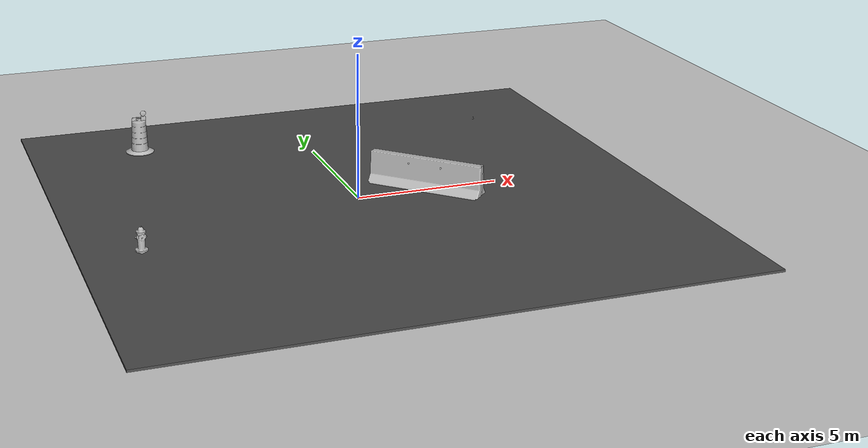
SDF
<sdf version="1.6">
 <world name="default">
  <light name="sun" type="directional">
   <pose>0 0 10 0 -0 0</pose>
   <diffuse>0.8 0.8 0.8 1</diffuse>
   <specular>0.2 0.2 0.2 1</specular>
   <attenuation>
    <range>1000</range>
    <constant>0.9</constant>
    <linear>0.01</linear>
    <quadratic>0.001</quadratic>
   </attenuation>
   <direction>-0.5 0.1 -0.9</direction>
  </light>
  <model name="ground_plane">
   <static>1</static>
   <link name="link">
    <collision name="collision">
     <geometry><plane><normal>0 0 1</normal><size>100 100</size></plane></geometry>
     <surface><friction><ode><mu>100</mu><mu2>50</mu2></ode></friction></surface>
    </collision>
    <visual name="visual">
     <cast_shadows>0</cast_shadows>
     <geometry><plane><normal>0 0 1</normal><size>100 100</size></plane></geometry>
     <material>
      <script><uri>file://media/materials/scripts/gazebo.material</uri><name>Gazebo/Grey</name></script>
     </material>
    </visual>
    <velocity_decay><linear>0</linear><angular>0</angular></velocity_decay>
   </link>
  </model>
  <physics name="default_physics" default="0" type="ode">
   <max_step_size>0.01</max_step_size>
   <real_time_factor>1</real_time_factor>
   <real_time_update_rate>100</real_time_update_rate>
  </physics>
  <scene><ambient>0.4 0.4 0.4 1</ambient><background>0.7 0.7 0.7 1</background><shadows>1</shadows></scene>
  <model name="fire_hydrant_1">
   <static>1</static>
   <link name="link">
    <collision name="collision">
     <geometry><mesh><uri>model://fire_hydrant/meshes/fire_hydrant.dae</uri><scale>1 1 1</scale></mesh></geometry>
    </collision>
    <visual name="visual">
     <geometry><mesh><uri>model://fire_hydrant/meshes/fire_hydrant.dae</uri><scale>1 1 1</scale></mesh></geometry>
    </visual>
    <velocity_decay><linear>0</linear><angular>0</angular></velocity_decay>
   </link>
   <pose>-7.90686 -2.41363 0 0 -0 0</pose>
  </model>
  <model name="jersey_barrier_15">
   <static>1</static>
   <link name="link">
    <visual name="visual">
     <geometry>
      <mesh><uri>model://jersey_barrier/meshes/jersey_barrier.dae</uri><scale>1 1 1</scale></mesh>
     </geometry>
    </visual>
    <collision name="upright">
     <pose>0 0 0.5715 0 -0 0</pose>
     <geometry><box><size>4.06542 0.3063 1.143</size></box></geometry>
    </collision>
    <collision name="base">
     <pose>0 0 0.032258 0 -0 0</pose>
     <geometry><box><size>4.06542 0.8107 0.064516</size></box></geometry>
    </collision>
    <collision name="base2">
     <pose>0 0 0.1 0 -0 0</pose>
     <geometry><box><size>4.06542 0.65 0.1</size></box></geometry>
    </collision>
    <collision name="base3">
     <pose>0 0 0.2 0 -0 0</pose>
     <geometry><box><size>4.06542 0.5 0.1</size></box></geometry>
    </collision>
    <collision name="left-angle">
     <pose>0 -0.224 0.2401 0.9 -0 0</pose>
     <geometry><box><size>4.06542 0.5 0.064516</size></box></geometry>
    </collision>
    <collision name="right-angle">
     <pose>0 0.224 0.2401 -0.9 0 0</pose>
     <geometry><box><size>4.06542 0.5 0.064516</size></box></geometry>
    </collision>
    <velocity_decay><linear>0</linear><angular>0</angular></velocity_decay>
   </link>
   <pose>2.45495 0 0 0 -0 2.36</pose>
  </model>
  <model name="Construction Cone_0">
   <link name="link">
    <collision name="collision">
     <geometry>
      <mesh><scale>1 1 1</scale><uri>model://construction_cone/meshes/construction_cone.dae</uri></mesh>
     </geometry>
    </collision>
    <visual name="visual">
     <geometry>
      <mesh><scale>1 1 1</scale><uri>model://construction_cone/meshes/construction_cone.dae</uri></mesh>
     </geometry>
    </visual>
    <velocity_decay><linear>0</linear><angular>0</angular></velocity_decay>
    <inertial>
     <inertia><ixx>1</ixx><ixy>0</ixy><ixz>0</ixz><iyy>1</iyy><iyz>0</iyz><izz>1</izz></inertia>
     <mass>1</mass>
    </inertial>
   </link>
   <pose>6.99685 6.55732 0.04902 1e-06 -0 -0.007009</pose>
   <static>0</static>
  </model>
  <model name="asphalt_plane">
   <static>1</static>
   <link name="link">
    <collision name="collision"><geometry><box><size>20 20 0.1</size></box></geometry></collision>
    <visual name="visual">
     <cast_shadows>0</cast_shadows>
     <geometry><box><size>20 20 0.1</size></box></geometry>
     <material>
      <script>
       <uri>model://asphalt_plane/materials/scripts</uri>
       <uri>model://asphalt_plane/materials/textures</uri>
       <name>vrc/asphalt</name>
      </script>
     </material>
    </visual>
    <velocity_decay><linear>0</linear><angular>0</angular></velocity_decay>
   </link>
   <pose>0.076733 -0.110379 0 0 -0 0</pose>
  </model>
  <model name="Construction Barrel_4">
   <link name="link">
    <inertial>
     <pose>0 0 0.4 0 -0 0</pose>
     <mass>500</mass>
     <inertia><ixx>51.2096</ixx><iyy>51.2096</iyy><izz>25</izz><ixy>0</ixy><ixz>0</ixz><iyz>0</iyz></inertia>
    </inertial>
    <collision name="collision">
     <geometry>
      <mesh><uri>model://construction_barrel/meshes/construction_barrel.dae</uri><scale>1 1 1</scale></mesh>
     </geometry>
    </collision>
    <visual name="visual">
     <geometry>
      <mesh><uri>model://construction_barrel/meshes/construction_barrel.dae</uri><scale>1 1 1</scale></mesh>
     </geometry>
    </visual>
    <velocity_decay><linear>0</linear><angular>0</angular></velocity_decay>
   </link>
   <pose>-6.00608 7.00913 0.049896 -9.9e-05 -0.000421 -0.049512</pose>
   <static>0</static>
  </model>
  <gravity>0 0 -9.8</gravity>
  <magnetic_field>6e-06 2.3e-05 -4.2e-05</magnetic_field>
  <atmosphere type="adiabatic"/>
  <spherical_coordinates>
   <surface_model>EARTH_WGS84</surface_model>
   <latitude_deg>0</latitude_deg>
   <longitude_deg>0</longitude_deg>
   <elevation>0</elevation>
   <heading_deg>0</heading_deg>
  </spherical_coordinates>
 </world>
</sdf>
